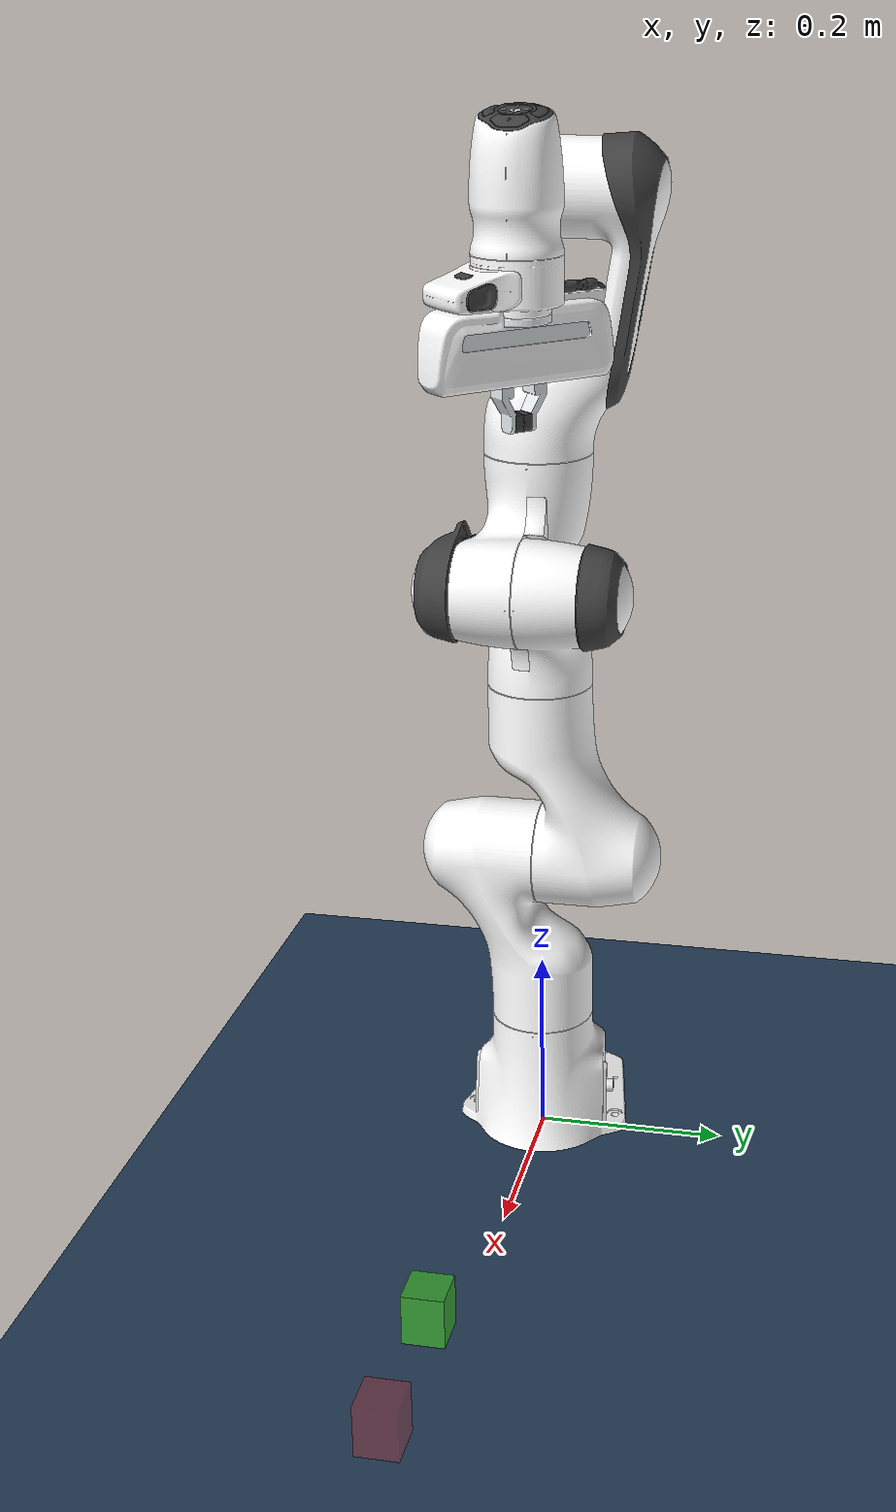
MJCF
<mujoco model="panda pick and place">
  <include file="panda.xml"/>

  <statistic center="0.3 0 0.4" extent="1"/>

  <option timestep="0.001" iterations="5" ls_iterations="8" integrator="implicitfast">
    <flag eulerdamp="disable"/>
  </option>

  <custom>
    <numeric data="12" name="max_contact_points"/>
  </custom>

  <visual>
    <headlight diffuse="0.6 0.6 0.6" ambient="0.3 0.3 0.3" specular="0 0 0"/>
    <rgba haze="0.15 0.25 0.35 1"/>
    <global azimuth="120" elevation="-20"/>
    <scale contactwidth="0.075" contactheight="0.025" forcewidth="0.05"
     com="0.05" framewidth="0.01" framelength="0.2"/>
  </visual>

  <asset>
    <texture type="skybox" builtin="gradient" rgb1="0.3 0.5 0.7"
     rgb2="0 0 0" width="512" height="3072"/>
    <texture type="2d" name="groundplane" builtin="checker" mark="edge"
     rgb1="0.2 0.3 0.4" rgb2="0.1 0.2 0.3" markrgb="0.8 0.8 0.8"
     width="300" height="300"/>
    <material name="groundplane" texture="groundplane" texuniform="true"
     texrepeat="5 5" reflectance="0.2"/>
  </asset>

  <worldbody>
    <light pos="0 0 1.5" dir="0 0 -1" directional="true"/>
    <geom name="floor" size="0 0 0.05" type="plane" material="groundplane"
     contype="1" conaffinity="1"/>

    <body name="object" pos="0.5 0.0 0.105" gravcomp="1">
      <freejoint name="object_joint"/>
      <geom type="box" name="object_geom" size="0.02 0.02 0.025"
       mass="0.05" condim="4"
       friction="1.0 0.03 0.003" rgba="0.2 0.6 0.2 1"
       contype="2" conaffinity="1"
       solref="0.01 1" solimp="0.99 0.995 0.01"/>
    </body>

    <!-- Target placement position (mocap, user-draggable) -->
    <body mocap="true" name="target" pos="0.65 0.0 0.105">
      <geom type="box" size="0.02 0.02 0.025" rgba="1 0.2 0.2 0.3"
       contype="0" conaffinity="0"/>
    </body>
  </worldbody>

  <!-- Sensors for the task cost computation -->
  <sensor>
    <!-- End-effector (gripper) position in world frame -->
    <framepos name="ee_pos" objtype="site" objname="gripper"/>
    <!-- End-effector rotation matrix (9 values, row-major) -->
    <framexaxis name="ee_xaxis" objtype="site" objname="gripper"/>
    <frameyaxis name="ee_yaxis" objtype="site" objname="gripper"/>
    <framezaxis name="ee_zaxis" objtype="site" objname="gripper"/>
    <!-- Object position in world frame -->
    <framepos name="obj_pos" objtype="body" objname="object"/>
    <!-- Target (mocap) position in world frame -->
    <framepos name="target_pos" objtype="body" objname="target"/>
  </sensor>

  <keyframe>
    <!-- Neutral / folded config: EE points straight down -->
    <key name="home"
      qpos="0 -0.785 0 -2.356 0 1.571 0.785 0.04 0.04
            0.5 0.0 0.105 1 0 0 0"
      ctrl="0.0 -4.0002579 -0.6437449 22.0221667 0.6338477 2.2781773 -0.0 0.04"/>
  </keyframe>
</mujoco>

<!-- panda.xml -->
<mujoco model="panda">
  <compiler angle="radian" meshdir="assets" autolimits="true"/>

  <default>
    <default class="panda">
      <material specular="0.5" shininess="0.25"/>
      <joint armature="0.1" damping="1" axis="0 0 1" range="-2.8973 2.8973"/>
      <general dyntype="none" biastype="affine" ctrlrange="-2.8973 2.8973" forcerange="-87 87"/>
      <position forcerange="-100 100"/>
      <default class="finger">
        <joint axis="0 1 0" type="slide" range="0 0.04"/>
      </default>

      <default class="visual">
        <geom type="mesh" contype="0" conaffinity="0" group="2"/>
      </default>
      <default class="collision">
        <geom group="3" type="mesh" contype="0" conaffinity="0"/>
        <default class="primitive_collision">
          <geom group="3" type="box" contype="0" conaffinity="0"
           condim="3" solimp="0.99 0.995 0.01" solref="0.01 1" friction="1 0.005 0.0001"/>
          <default class="fingertip_pad_collision_1">
            <geom type="box" size="0.011 0.0075 0.01" pos="0 0.0185 0.011"/>
          </default>
          <default class="fingertip_pad_collision_2">
            <geom type="box" size="0.011 0.0044 0.0019" pos="0 0.0068 0.0022"/>
          </default>
          <default class="fingertip_pad_collision_3">
            <geom type="box" size="0.00875 0.0035 0.01175" pos="0 0.0159 0.02835" quat="1 0.25 0 0"/>
          </default>
          <default class="fingertip_pad_collision_4">
            <geom type="box" size="0.00875 0.0076 0.00825" pos="0 0.00758 0.04525" conaffinity="3"/>
          </default>
        </default>
      </default>
    </default>
  </default>

  <asset>
    <material class="panda" name="white" rgba="1 1 1 1"/>
    <material class="panda" name="off_white" rgba="0.901961 0.921569 0.929412 1"/>
    <material class="panda" name="black" rgba="0.25 0.25 0.25 1"/>
    <material class="panda" name="green" rgba="0 1 0 1"/>
    <material class="panda" name="light_blue" rgba="0.039216 0.541176 0.780392 1"/>

    <!-- Collision meshes -->
    <mesh name="link0_c" file="link0.stl"/>
    <mesh name="link1_c" file="link1.stl"/>
    <mesh name="link2_c" file="link2.stl"/>
    <mesh name="link3_c" file="link3.stl"/>
    <mesh name="link4_c" file="link4.stl"/>
    <mesh name="link5_c0" file="link5_collision_0.obj"/>
    <mesh name="link5_c1" file="link5_collision_1.obj"/>
    <mesh name="link5_c2" file="link5_collision_2.obj"/>
    <mesh name="link6_c" file="link6.stl"/>
    <mesh name="link7_c" file="link7.stl"/>
    <mesh name="hand_c" file="hand.stl"/>

    <!-- Visual meshes -->
    <mesh file="link0_0.obj"/>
    <mesh file="link0_1.obj"/>
    <mesh file="link0_2.obj"/>
    <mesh file="link0_3.obj"/>
    <mesh file="link0_4.obj"/>
    <mesh file="link0_5.obj"/>
    <mesh file="link0_7.obj"/>
    <mesh file="link0_8.obj"/>
    <mesh file="link0_9.obj"/>
    <mesh file="link0_10.obj"/>
    <mesh file="link0_11.obj"/>
    <mesh file="link1.obj"/>
    <mesh file="link2.obj"/>
    <mesh file="link3_0.obj"/>
    <mesh file="link3_1.obj"/>
    <mesh file="link3_2.obj"/>
    <mesh file="link3_3.obj"/>
    <mesh file="link4_0.obj"/>
    <mesh file="link4_1.obj"/>
    <mesh file="link4_2.obj"/>
    <mesh file="link4_3.obj"/>
    <mesh file="link5_0.obj"/>
    <mesh file="link5_1.obj"/>
    <mesh file="link5_2.obj"/>
    <mesh file="link6_0.obj"/>
    <mesh file="link6_1.obj"/>
    <mesh file="link6_2.obj"/>
    <mesh file="link6_3.obj"/>
    <mesh file="link6_4.obj"/>
    <mesh file="link6_5.obj"/>
    <mesh file="link6_6.obj"/>
    <mesh file="link6_7.obj"/>
    <mesh file="link6_8.obj"/>
    <mesh file="link6_9.obj"/>
    <mesh file="link6_10.obj"/>
    <mesh file="link6_11.obj"/>
    <mesh file="link6_12.obj"/>
    <mesh file="link6_13.obj"/>
    <mesh file="link6_14.obj"/>
    <mesh file="link6_15.obj"/>
    <mesh file="link6_16.obj"/>
    <mesh file="link7_0.obj"/>
    <mesh file="link7_1.obj"/>
    <mesh file="link7_2.obj"/>
    <mesh file="link7_3.obj"/>
    <mesh file="link7_4.obj"/>
    <mesh file="link7_5.obj"/>
    <mesh file="link7_6.obj"/>
    <mesh file="link7_7.obj"/>
    <mesh file="hand_0.obj"/>
    <mesh file="hand_1.obj"/>
    <mesh file="hand_2.obj"/>
    <mesh file="hand_3.obj"/>
    <mesh file="hand_4.obj"/>
    <mesh file="finger_0.obj"/>
    <mesh file="finger_1.obj"/>
  </asset>

  <worldbody>
    <light name="top" pos="0 0 2" mode="trackcom"/>
    <body name="link0" childclass="panda">
      <inertial mass="0.629769" pos="-0.041018 -0.00014 0.049974"
        fullinertia="0.00315 0.00388 0.004285 8.2904e-7 0.00015 8.2299e-6"/>
      <geom mesh="link0_0" material="off_white" class="visual"/>
      <geom mesh="link0_1" material="black" class="visual"/>
      <geom mesh="link0_2" material="off_white" class="visual"/>
      <geom mesh="link0_3" material="black" class="visual"/>
      <geom mesh="link0_4" material="off_white" class="visual"/>
      <geom mesh="link0_5" material="black" class="visual"/>
      <geom mesh="link0_7" material="white" class="visual"/>
      <geom mesh="link0_8" material="white" class="visual"/>
      <geom mesh="link0_9" material="black" class="visual"/>
      <geom mesh="link0_10" material="off_white" class="visual"/>
      <geom mesh="link0_11" material="white" class="visual"/>
      <geom mesh="link0_c" class="collision"/>
      <body name="link1" pos="0 0 0.333">
        <inertial mass="4.970684" pos="0.003875 0.002081 -0.04762"
          fullinertia="0.70337 0.70661 0.0091170 -0.00013900 0.0067720 0.019169"/>
        <joint name="joint1" frictionloss="0.8509"/>
        <geom material="white" mesh="link1" class="visual"/>
        <geom mesh="link1_c" class="collision"/>
        <body name="link2" quat="1 -1 0 0">
          <inertial mass="0.646926" pos="-0.003141 -0.02872 0.003495"
            fullinertia="0.0079620 2.8110e-2 2.5995e-2 -3.925e-3 1.0254e-2 7.04e-4"/>
          <joint name="joint2" range="-1.7628 1.7628" frictionloss="0.8517"/>
          <geom material="white" mesh="link2" class="visual"/>
          <geom mesh="link2_c" class="collision"/>
          <body name="link3" pos="0 -0.316 0" quat="1 1 0 0">
            <joint name="joint3" frictionloss="0.8928" damping="1.0991"/>
            <inertial mass="3.228604" pos="2.7518e-2 3.9252e-2 -6.6502e-2"
              fullinertia="3.7242e-2 3.6155e-2 1.083e-2 -4.761e-3 -1.1396e-2 -1.2805e-2"/>
            <geom mesh="link3_0" material="white" class="visual"/>
            <geom mesh="link3_1" material="white" class="visual"/>
            <geom mesh="link3_2" material="white" class="visual"/>
            <geom mesh="link3_3" material="black" class="visual"/>
            <geom mesh="link3_c" class="collision"/>
            <body name="link4" pos="0.0825 0 0" quat="1 1 0 0">
              <inertial mass="3.587895" pos="-5.317e-2 1.04419e-1 2.7454e-2"
                fullinertia="2.5853e-2 1.9552e-2 2.8323e-2 7.796e-3 -1.332e-3 8.641e-3"/>
              <joint name="joint4" range="-3.0718 -0.0698" frictionloss="0.8808" damping="0.944"/>
              <geom mesh="link4_0" material="white" class="visual"/>
              <geom mesh="link4_1" material="white" class="visual"/>
              <geom mesh="link4_2" material="black" class="visual"/>
              <geom mesh="link4_3" material="white" class="visual"/>
              <geom mesh="link4_c" class="collision"/>
              <body name="link5" pos="-0.0825 0.384 0" quat="1 -1 0 0">
                <inertial mass="1.225946" pos="-1.1953e-2 4.1065e-2 -3.8437e-2"
                  fullinertia="3.5549e-2 2.9474e-2 8.627e-3 -2.117e-3 -4.037e-3 2.29e-4"/>
                <joint name="joint5" frictionloss="0.6042"/>
                <geom mesh="link5_0" material="black" class="visual"/>
                <geom mesh="link5_1" material="white" class="visual"/>
                <geom mesh="link5_2" material="white" class="visual"/>
                <geom mesh="link5_c0" class="collision"/>
                <geom mesh="link5_c1" class="collision"/>
                <geom mesh="link5_c2" class="collision"/>
                <body name="link6" quat="1 1 0 0">
                  <inertial mass="1.666555" pos="6.0149e-2 -1.4117e-2 -1.0517e-2"
                    fullinertia="1.964e-3 4.354e-3 5.433e-3 1.09e-4 -1.158e-3 3.41e-4"/>
                  <joint name="joint6" range="-0.0175 3.7525" frictionloss="0.7785"/>
                  <geom mesh="link6_0" material="off_white" class="visual"/>
                  <geom mesh="link6_1" material="white" class="visual"/>
                  <geom mesh="link6_2" material="black" class="visual"/>
                  <geom mesh="link6_3" material="white" class="visual"/>
                  <geom mesh="link6_4" material="white" class="visual"/>
                  <geom mesh="link6_5" material="white" class="visual"/>
                  <geom mesh="link6_6" material="white" class="visual"/>
                  <geom mesh="link6_7" material="light_blue" class="visual"/>
                  <geom mesh="link6_8" material="light_blue" class="visual"/>
                  <geom mesh="link6_9" material="black" class="visual"/>
                  <geom mesh="link6_10" material="black" class="visual"/>
                  <geom mesh="link6_11" material="white" class="visual"/>
                  <geom mesh="link6_12" material="green" class="visual"/>
                  <geom mesh="link6_13" material="white" class="visual"/>
                  <geom mesh="link6_14" material="black" class="visual"/>
                  <geom mesh="link6_15" material="black" class="visual"/>
                  <geom mesh="link6_16" material="white" class="visual"/>
                  <geom mesh="link6_c" class="collision"/>
                  <body name="link7" pos="0.088 0 0" quat="1 1 0 0">
                    <inertial mass="7.35522e-01" pos="1.0517e-2 -4.252e-3 6.1597e-2"
                      fullinertia="1.2516e-2 1.0027e-2 4.815e-3 -4.28e-4 -1.196e-3 -7.41e-4"/>
                    <joint name="joint7" frictionloss="0.3249"/>
                    <geom mesh="link7_0" material="white" class="visual"/>
                    <geom mesh="link7_1" material="black" class="visual"/>
                    <geom mesh="link7_2" material="black" class="visual"/>
                    <geom mesh="link7_3" material="black" class="visual"/>
                    <geom mesh="link7_4" material="black" class="visual"/>
                    <geom mesh="link7_5" material="black" class="visual"/>
                    <geom mesh="link7_6" material="black" class="visual"/>
                    <geom mesh="link7_7" material="white" class="visual"/>
                    <geom mesh="link7_c" class="collision"/>
                    <body name="hand" pos="0 0 0.107" quat="0.9238795 0 0 -0.3826834">
                      <inertial mass="0.73" pos="-0.01 0 0.03" diaginertia="0.001 0.0025 0.0017"/>
                      <geom mesh="hand_0" material="off_white" class="visual"/>
                      <geom mesh="hand_1" material="black" class="visual"/>
                      <geom mesh="hand_2" material="black" class="visual"/>
                      <geom mesh="hand_3" material="white" class="visual"/>
                      <geom mesh="hand_4" material="off_white" class="visual"/>
                      <geom mesh="hand_c" class="collision"/>
                      <geom name="hand_capsule" type="capsule"
                       class="collision" conaffinity="1" size="0.04 0.06"
                       quat="1 1 0 0" pos="0 0 0.03"/>
                      <site name="gripper" pos="0 0 0.1"/>
                      <body name="left_finger" pos="0 0 0.0584">
                        <inertial mass="0.015" pos="0 0 0" diaginertia="2.375e-6 2.375e-6 7.5e-7"/>
                        <joint name="finger_joint1" class="finger" damping="10"/>
                        <geom mesh="finger_0" material="off_white" class="visual"/>
                        <geom mesh="finger_1" material="black" class="visual"/>
                        <geom mesh="finger_0" class="collision"/>
                        <geom class="fingertip_pad_collision_1"/>
                        <geom class="fingertip_pad_collision_2"/>
                        <geom class="fingertip_pad_collision_3"/>
                        <geom name="left_finger_pad" class="fingertip_pad_collision_4"/>
                      </body>
                      <body name="right_finger" pos="0 0 0.0584" quat="0 0 0 1">
                        <inertial mass="0.015" pos="0 0 0" diaginertia="2.375e-6 2.375e-6 7.5e-7"/>
                        <joint name="finger_joint2" class="finger" damping="10"/>
                        <geom mesh="finger_0" material="off_white" class="visual"/>
                        <geom mesh="finger_1" material="black" class="visual"/>
                        <geom mesh="finger_0" class="collision"/>
                        <geom class="fingertip_pad_collision_1"/>
                        <geom class="fingertip_pad_collision_2"/>
                        <geom class="fingertip_pad_collision_3"/>
                        <geom name="right_finger_pad" class="fingertip_pad_collision_4"/>
                      </body>
                    </body>
                  </body>
                </body>
              </body>
            </body>
          </body>
        </body>
      </body>
    </body>
  </worldbody>

  <equality>
    <joint joint1="finger_joint1" joint2="finger_joint2" solimp="0.95 0.99 0.001" solref="0.005 1"/>
  </equality>

  <actuator>
    <general name="motor1" joint="joint1" ctrllimited="true" ctrlrange="-87 87"/>
    <general name="motor2" joint="joint2" ctrllimited="true" ctrlrange="-87 87"/>
    <general name="motor3" joint="joint3" ctrllimited="true" ctrlrange="-87 87"/>
    <general name="motor4" joint="joint4" ctrllimited="true" ctrlrange="-87 87"/>
    <general name="motor5" joint="joint5" ctrllimited="true" ctrlrange="-12 12"/>
    <general name="motor6" joint="joint6" ctrllimited="true" ctrlrange="-12 12"/>
    <general name="motor7" joint="joint7" ctrllimited="true" ctrlrange="-12 12"/>
    <general class="panda" name="actuator8" joint="finger_joint1"
     ctrlrange="0 0.04" gainprm="350 0 0" biasprm="0 -350 -10" forcerange="-200 200"/>
  </actuator>

  <contact>
    <exclude body1="link0" body2="link1"/>
  </contact>
</mujoco>
